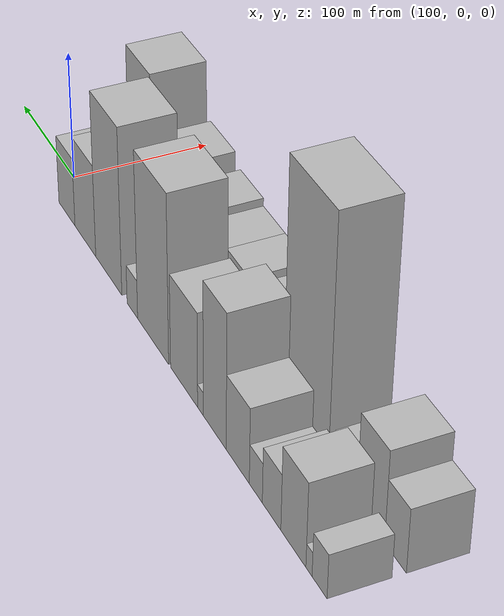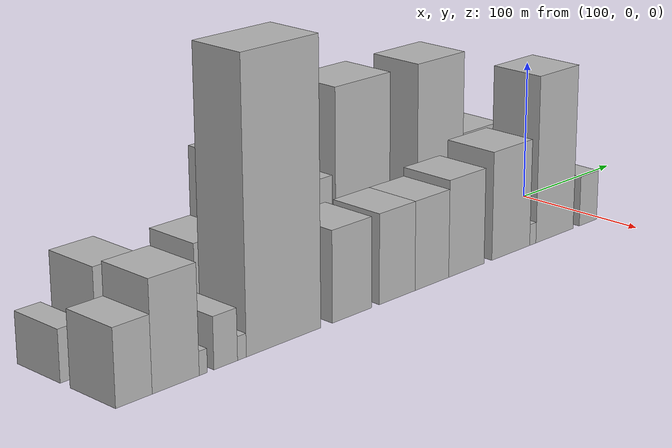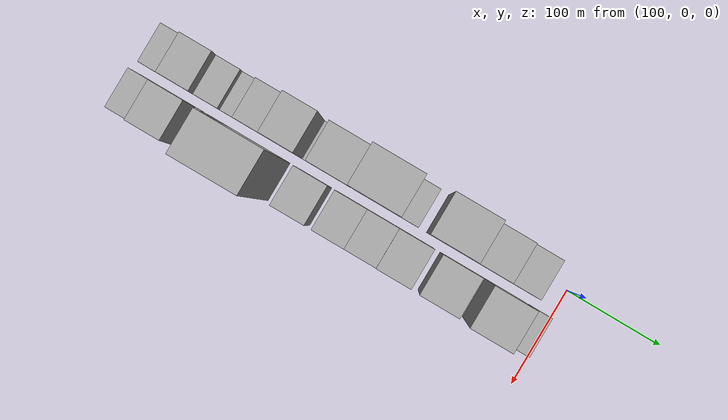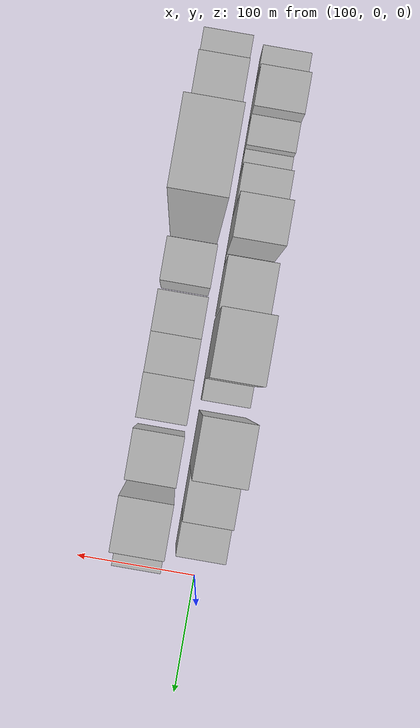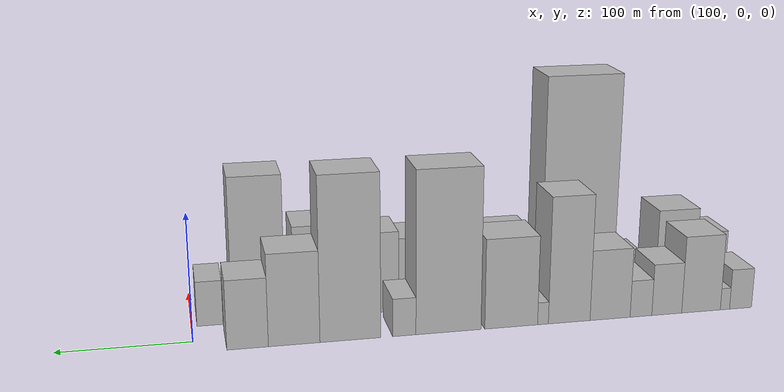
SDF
<sdf version="1.6">
 <world name="default">
  <model name="building_1">
   <static>1</static>
   <pose>100.0000 -428.6040 0 0.000000 0.000000 0.000000</pose>
   <link name="link">
    <pose>0 0 16.50 0 0 0</pose>
    <collision name="collision"><geometry><box><size>40.0000 18.7920 33.0000</size></box></geometry></collision>
    <visual name="visual">
     <cast_shadows>0</cast_shadows>
     <geometry><box><size>40.0000 18.7920 33.0000</size></box></geometry>
     <material>
      <script>
       <uri>model://HANNAS_wall/materials/scripts</uri>
       <uri>model://HANNAS_wall/materials/textures</uri>
       <name>vrc/HANNAS_wall</name>
      </script>
     </material>
    </visual>
   </link>
  </model>
  <model name="building_2">
   <static>1</static>
   <pose>100.0000 -415.2792 0 0.000000 0.000000 0.000000</pose>
   <link name="link">
    <pose>0 0 9.00 0 0 0</pose>
    <collision name="collision"><geometry><box><size>40.0000 7.8576 18.0000</size></box></geometry></collision>
    <visual name="visual">
     <cast_shadows>0</cast_shadows>
     <geometry><box><size>40.0000 7.8576 18.0000</size></box></geometry>
     <material>
      <script>
       <uri>model://HANNAS_wall/materials/scripts</uri>
       <uri>model://HANNAS_wall/materials/textures</uri>
       <name>vrc/HANNAS_wall</name>
      </script>
     </material>
    </visual>
   </link>
  </model>
  <model name="building_3">
   <static>1</static>
   <pose>100.0000 -395.0253 0 0.000000 0.000000 0.000000</pose>
   <link name="link">
    <pose>0 0 31.50 0 0 0</pose>
    <collision name="collision"><geometry><box><size>40.0000 32.6501 63.0000</size></box></geometry></collision>
    <visual name="visual">
     <cast_shadows>0</cast_shadows>
     <geometry><box><size>40.0000 32.6501 63.0000</size></box></geometry>
     <material>
      <script>
       <uri>model://HANNAS_wall/materials/scripts</uri>
       <uri>model://HANNAS_wall/materials/textures</uri>
       <name>vrc/HANNAS_wall</name>
      </script>
     </material>
    </visual>
   </link>
  </model>
  <model name="building_4">
   <static>1</static>
   <pose>100.0000 -366.2314 0 0.000000 0.000000 0.000000</pose>
   <link name="link">
    <pose>0 0 21.00 0 0 0</pose>
    <collision name="collision"><geometry><box><size>40.0000 24.9377 42.0000</size></box></geometry></collision>
    <visual name="visual">
     <cast_shadows>0</cast_shadows>
     <geometry><box><size>40.0000 24.9377 42.0000</size></box></geometry>
     <material>
      <script>
       <uri>model://HANNAS_wall/materials/scripts</uri>
       <uri>model://HANNAS_wall/materials/textures</uri>
       <name>vrc/HANNAS_wall</name>
      </script>
     </material>
    </visual>
   </link>
  </model>
  <model name="building_5">
   <static>1</static>
   <pose>100.0000 -344.7753 0 0.000000 0.000000 0.000000</pose>
   <link name="link">
    <pose>0 0 15.00 0 0 0</pose>
    <collision name="collision"><geometry><box><size>40.0000 17.9746 30.0000</size></box></geometry></collision>
    <visual name="visual">
     <cast_shadows>0</cast_shadows>
     <geometry><box><size>40.0000 17.9746 30.0000</size></box></geometry>
     <material>
      <script>
       <uri>model://HANNAS_wall/materials/scripts</uri>
       <uri>model://HANNAS_wall/materials/textures</uri>
       <name>vrc/HANNAS_wall</name>
      </script>
     </material>
    </visual>
   </link>
  </model>
  <model name="building_6">
   <static>1</static>
   <pose>100.0000 -319.3655 0 0.000000 0.000000 0.000000</pose>
   <link name="link">
    <pose>0 0 28.50 0 0 0</pose>
    <collision name="collision"><geometry><box><size>40.0000 32.8450 57.0000</size></box></geometry></collision>
    <visual name="visual">
     <cast_shadows>0</cast_shadows>
     <geometry><box><size>40.0000 32.8450 57.0000</size></box></geometry>
     <material>
      <script>
       <uri>model://HANNAS_wall/materials/scripts</uri>
       <uri>model://HANNAS_wall/materials/textures</uri>
       <name>vrc/HANNAS_wall</name>
      </script>
     </material>
    </visual>
   </link>
  </model>
  <model name="building_7">
   <static>1</static>
   <pose>100.0000 -286.0681 0 0.000000 0.000000 0.000000</pose>
   <link name="link">
    <pose>0 0 51.00 0 0 0</pose>
    <collision name="collision"><geometry><box><size>40.0000 33.7496 102.0000</size></box></geometry></collision>
    <visual name="visual">
     <cast_shadows>0</cast_shadows>
     <geometry><box><size>40.0000 33.7496 102.0000</size></box></geometry>
     <material>
      <script>
       <uri>model://HANNAS_wall/materials/scripts</uri>
       <uri>model://HANNAS_wall/materials/textures</uri>
       <name>vrc/HANNAS_wall</name>
      </script>
     </material>
    </visual>
   </link>
  </model>
  <model name="building_8">
   <static>1</static>
   <pose>100.0000 -264.8809 0 0.000000 0.000000 0.000000</pose>
   <link name="link">
    <pose>0 0 9.00 0 0 0</pose>
    <collision name="collision"><geometry><box><size>40.0000 8.6249 18.0000</size></box></geometry></collision>
    <visual name="visual">
     <cast_shadows>0</cast_shadows>
     <geometry><box><size>40.0000 8.6249 18.0000</size></box></geometry>
     <material>
      <script>
       <uri>model://HANNAS_wall/materials/scripts</uri>
       <uri>model://HANNAS_wall/materials/textures</uri>
       <name>vrc/HANNAS_wall</name>
      </script>
     </material>
    </visual>
   </link>
  </model>
  <model name="building_9">
   <static>1</static>
   <pose>100.0000 -239.6366 0 0.000000 0.000000 0.000000</pose>
   <link name="link">
    <pose>0 0 36.00 0 0 0</pose>
    <collision name="collision"><geometry><box><size>40.0000 41.8636 72.0000</size></box></geometry></collision>
    <visual name="visual">
     <cast_shadows>0</cast_shadows>
     <geometry><box><size>40.0000 41.8636 72.0000</size></box></geometry>
     <material>
      <script>
       <uri>model://HANNAS_wall/materials/scripts</uri>
       <uri>model://HANNAS_wall/materials/textures</uri>
       <name>vrc/HANNAS_wall</name>
      </script>
     </material>
    </visual>
   </link>
  </model>
  <model name="building_10">
   <static>1</static>
   <pose>100.0000 -190.4069 0 0.000000 0.000000 0.000000</pose>
   <link name="link">
    <pose>0 0 64.50 0 0 0</pose>
    <collision name="collision"><geometry><box><size>40.0000 50.5959 129.0000</size></box></geometry></collision>
    <visual name="visual">
     <cast_shadows>0</cast_shadows>
     <geometry><box><size>40.0000 50.5959 129.0000</size></box></geometry>
     <material>
      <script>
       <uri>model://HANNAS_wall/materials/scripts</uri>
       <uri>model://HANNAS_wall/materials/textures</uri>
       <name>vrc/HANNAS_wall</name>
      </script>
     </material>
    </visual>
   </link>
  </model>
  <model name="building_11">
   <static>1</static>
   <pose>100.0000 -156.2125 0 0.000000 0.000000 0.000000</pose>
   <link name="link">
    <pose>0 0 15.00 0 0 0</pose>
    <collision name="collision"><geometry><box><size>40.0000 17.7929 30.0000</size></box></geometry></collision>
    <visual name="visual">
     <cast_shadows>0</cast_shadows>
     <geometry><box><size>40.0000 17.7929 30.0000</size></box></geometry>
     <material>
      <script>
       <uri>model://HANNAS_wall/materials/scripts</uri>
       <uri>model://HANNAS_wall/materials/textures</uri>
       <name>vrc/HANNAS_wall</name>
      </script>
     </material>
    </visual>
   </link>
  </model>
  <model name="building_12">
   <static>1</static>
   <pose>100.0000 -115.3608 0 0.000000 0.000000 0.000000</pose>
   <link name="link">
    <pose>0 0 64.50 0 0 0</pose>
    <collision name="collision"><geometry><box><size>40.0000 45.9103 129.0000</size></box></geometry></collision>
    <visual name="visual">
     <cast_shadows>0</cast_shadows>
     <geometry><box><size>40.0000 45.9103 129.0000</size></box></geometry>
     <material>
      <script>
       <uri>model://HANNAS_wall/materials/scripts</uri>
       <uri>model://HANNAS_wall/materials/textures</uri>
       <name>vrc/HANNAS_wall</name>
      </script>
     </material>
    </visual>
   </link>
  </model>
  <model name="building_13">
   <static>1</static>
   <pose>100.0000 -73.3016 0 0.000000 0.000000 0.000000</pose>
   <link name="link">
    <pose>0 0 36.00 0 0 0</pose>
    <collision name="collision"><geometry><box><size>40.0000 38.2082 72.0000</size></box></geometry></collision>
    <visual name="visual">
     <cast_shadows>0</cast_shadows>
     <geometry><box><size>40.0000 38.2082 72.0000</size></box></geometry>
     <material>
      <script>
       <uri>model://HANNAS_wall/materials/scripts</uri>
       <uri>model://HANNAS_wall/materials/textures</uri>
       <name>vrc/HANNAS_wall</name>
      </script>
     </material>
    </visual>
   </link>
  </model>
  <model name="building_14">
   <static>1</static>
   <pose>100.0000 -39.0240 0 0.000000 0.000000 0.000000</pose>
   <link name="link">
    <pose>0 0 27.00 0 0 0</pose>
    <collision name="collision"><geometry><box><size>40.0000 30.3471 54.0000</size></box></geometry></collision>
    <visual name="visual">
     <cast_shadows>0</cast_shadows>
     <geometry><box><size>40.0000 30.3471 54.0000</size></box></geometry>
     <material>
      <script>
       <uri>model://HANNAS_wall/materials/scripts</uri>
       <uri>model://HANNAS_wall/materials/textures</uri>
       <name>vrc/HANNAS_wall</name>
      </script>
     </material>
    </visual>
   </link>
  </model>
  <model name="building_28">
   <static>1</static>
   <pose>149.0000 -424.8839 0 0.000000 0.000000 0.000000</pose>
   <link name="link">
    <pose>0 0 24.00 0 0 0</pose>
    <collision name="collision"><geometry><box><size>40.0000 26.2322 48.0000</size></box></geometry></collision>
    <visual name="visual">
     <cast_shadows>0</cast_shadows>
     <geometry><box><size>40.0000 26.2322 48.0000</size></box></geometry>
     <material>
      <script>
       <uri>model://HANNAS_wall/materials/scripts</uri>
       <uri>model://HANNAS_wall/materials/textures</uri>
       <name>vrc/HANNAS_wall</name>
      </script>
     </material>
    </visual>
   </link>
  </model>
  <model name="building_29">
   <static>1</static>
   <pose>149.0000 -394.2897 0 0.000000 0.000000 0.000000</pose>
   <link name="link">
    <pose>0 0 34.50 0 0 0</pose>
    <collision name="collision"><geometry><box><size>40.0000 34.9562 69.0000</size></box></geometry></collision>
    <visual name="visual">
     <cast_shadows>0</cast_shadows>
     <geometry><box><size>40.0000 34.9562 69.0000</size></box></geometry>
     <material>
      <script>
       <uri>model://HANNAS_wall/materials/scripts</uri>
       <uri>model://HANNAS_wall/materials/textures</uri>
       <name>vrc/HANNAS_wall</name>
      </script>
     </material>
    </visual>
   </link>
  </model>
  <model name="building_30">
   <static>1</static>
   <pose>149.0000 -373.6781 0 0.000000 0.000000 0.000000</pose>
   <link name="link">
    <pose>0 0 7.50 0 0 0</pose>
    <collision name="collision"><geometry><box><size>40.0000 6.2671 15.0000</size></box></geometry></collision>
    <visual name="visual">
     <cast_shadows>0</cast_shadows>
     <geometry><box><size>40.0000 6.2671 15.0000</size></box></geometry>
     <material>
      <script>
       <uri>model://HANNAS_wall/materials/scripts</uri>
       <uri>model://HANNAS_wall/materials/textures</uri>
       <name>vrc/HANNAS_wall</name>
      </script>
     </material>
    </visual>
   </link>
  </model>
  <model name="building_31">
   <static>1</static>
   <pose>149.0000 -356.3457 0 0.000000 0.000000 0.000000</pose>
   <link name="link">
    <pose>0 0 16.50 0 0 0</pose>
    <collision name="collision"><geometry><box><size>40.0000 18.3976 33.0000</size></box></geometry></collision>
    <visual name="visual">
     <cast_shadows>0</cast_shadows>
     <geometry><box><size>40.0000 18.3976 33.0000</size></box></geometry>
     <material>
      <script>
       <uri>model://HANNAS_wall/materials/scripts</uri>
       <uri>model://HANNAS_wall/materials/textures</uri>
       <name>vrc/HANNAS_wall</name>
      </script>
     </material>
    </visual>
   </link>
  </model>
  <model name="building_32">
   <static>1</static>
   <pose>149.0000 -343.6313 0 0.000000 0.000000 0.000000</pose>
   <link name="link">
    <pose>0 0 7.50 0 0 0</pose>
    <collision name="collision"><geometry><box><size>40.0000 7.0311 15.0000</size></box></geometry></collision>
    <visual name="visual">
     <cast_shadows>0</cast_shadows>
     <geometry><box><size>40.0000 7.0311 15.0000</size></box></geometry>
     <material>
      <script>
       <uri>model://HANNAS_wall/materials/scripts</uri>
       <uri>model://HANNAS_wall/materials/textures</uri>
       <name>vrc/HANNAS_wall</name>
      </script>
     </material>
    </visual>
   </link>
  </model>
  <model name="building_33">
   <static>1</static>
   <pose>149.0000 -309.3926 0 0.000000 0.000000 0.000000</pose>
   <link name="link">
    <pose>0 0 91.50 0 0 0</pose>
    <collision name="collision"><geometry><box><size>40.0000 61.4463 183.0000</size></box></geometry></collision>
    <visual name="visual">
     <cast_shadows>0</cast_shadows>
     <geometry><box><size>40.0000 61.4463 183.0000</size></box></geometry>
     <material>
      <script>
       <uri>model://HANNAS_wall/materials/scripts</uri>
       <uri>model://HANNAS_wall/materials/textures</uri>
       <name>vrc/HANNAS_wall</name>
      </script>
     </material>
    </visual>
   </link>
  </model>
  <model name="building_34">
   <static>1</static>
   <pose>149.0000 -251.3456 0 0.000000 0.000000 0.000000</pose>
   <link name="link">
    <pose>0 0 30.00 0 0 0</pose>
    <collision name="collision"><geometry><box><size>40.0000 34.6478 60.0000</size></box></geometry></collision>
    <visual name="visual">
     <cast_shadows>0</cast_shadows>
     <geometry><box><size>40.0000 34.6478 60.0000</size></box></geometry>
     <material>
      <script>
       <uri>model://HANNAS_wall/materials/scripts</uri>
       <uri>model://HANNAS_wall/materials/textures</uri>
       <name>vrc/HANNAS_wall</name>
      </script>
     </material>
    </visual>
   </link>
  </model>
  <model name="building_35">
   <static>1</static>
   <pose>149.0000 -210.4930 0 0.000000 0.000000 0.000000</pose>
   <link name="link">
    <pose>0 0 30.00 0 0 0</pose>
    <collision name="collision"><geometry><box><size>40.0000 33.0572 60.0000</size></box></geometry></collision>
    <visual name="visual">
     <cast_shadows>0</cast_shadows>
     <geometry><box><size>40.0000 33.0572 60.0000</size></box></geometry>
     <material>
      <script>
       <uri>model://HANNAS_wall/materials/scripts</uri>
       <uri>model://HANNAS_wall/materials/textures</uri>
       <name>vrc/HANNAS_wall</name>
      </script>
     </material>
    </visual>
   </link>
  </model>
  <model name="building_36">
   <static>1</static>
   <pose>149.0000 -177.7539 0 0.000000 0.000000 0.000000</pose>
   <link name="link">
    <pose>0 0 30.00 0 0 0</pose>
    <collision name="collision"><geometry><box><size>40.0000 32.4210 60.0000</size></box></geometry></collision>
    <visual name="visual">
     <cast_shadows>0</cast_shadows>
     <geometry><box><size>40.0000 32.4210 60.0000</size></box></geometry>
     <material>
      <script>
       <uri>model://HANNAS_wall/materials/scripts</uri>
       <uri>model://HANNAS_wall/materials/textures</uri>
       <name>vrc/HANNAS_wall</name>
      </script>
     </material>
    </visual>
   </link>
  </model>
  <model name="building_37">
   <static>1</static>
   <pose>149.0000 -143.9189 0 0.000000 0.000000 0.000000</pose>
   <link name="link">
    <pose>0 0 33.00 0 0 0</pose>
    <collision name="collision"><geometry><box><size>40.0000 35.2490 66.0000</size></box></geometry></collision>
    <visual name="visual">
     <cast_shadows>0</cast_shadows>
     <geometry><box><size>40.0000 35.2490 66.0000</size></box></geometry>
     <material>
      <script>
       <uri>model://HANNAS_wall/materials/scripts</uri>
       <uri>model://HANNAS_wall/materials/textures</uri>
       <name>vrc/HANNAS_wall</name>
      </script>
     </material>
    </visual>
   </link>
  </model>
  <model name="building_38">
   <static>1</static>
   <pose>149.0000 -98.4647 0 0.000000 0.000000 0.000000</pose>
   <link name="link">
    <pose>0 0 37.50 0 0 0</pose>
    <collision name="collision"><geometry><box><size>40.0000 39.6595 75.0000</size></box></geometry></collision>
    <visual name="visual">
     <cast_shadows>0</cast_shadows>
     <geometry><box><size>40.0000 39.6595 75.0000</size></box></geometry>
     <material>
      <script>
       <uri>model://HANNAS_wall/materials/scripts</uri>
       <uri>model://HANNAS_wall/materials/textures</uri>
       <name>vrc/HANNAS_wall</name>
      </script>
     </material>
    </visual>
   </link>
  </model>
  <model name="building_39">
   <static>1</static>
   <pose>149.0000 -75.2863 0 0.000000 0.000000 0.000000</pose>
   <link name="link">
    <pose>0 0 7.50 0 0 0</pose>
    <collision name="collision"><geometry><box><size>40.0000 6.6972 15.0000</size></box></geometry></collision>
    <visual name="visual">
     <cast_shadows>0</cast_shadows>
     <geometry><box><size>40.0000 6.6972 15.0000</size></box></geometry>
     <material>
      <script>
       <uri>model://HANNAS_wall/materials/scripts</uri>
       <uri>model://HANNAS_wall/materials/textures</uri>
       <name>vrc/HANNAS_wall</name>
      </script>
     </material>
    </visual>
   </link>
  </model>
  <model name="building_40">
   <static>1</static>
   <pose>149.0000 -51.4730 0 0.000000 0.000000 0.000000</pose>
   <link name="link">
    <pose>0 0 58.50 0 0 0</pose>
    <collision name="collision"><geometry><box><size>40.0000 40.9293 117.0000</size></box></geometry></collision>
    <visual name="visual">
     <cast_shadows>0</cast_shadows>
     <geometry><box><size>40.0000 40.9293 117.0000</size></box></geometry>
     <material>
      <script>
       <uri>model://HANNAS_wall/materials/scripts</uri>
       <uri>model://HANNAS_wall/materials/textures</uri>
       <name>vrc/HANNAS_wall</name>
      </script>
     </material>
    </visual>
   </link>
  </model>
  <model name="building_41">
   <static>1</static>
   <pose>149.0000 -14.0813 0 0.000000 0.000000 0.000000</pose>
   <link name="link">
    <pose>0 0 18.00 0 0 0</pose>
    <collision name="collision"><geometry><box><size>40.0000 19.8541 36.0000</size></box></geometry></collision>
    <visual name="visual">
     <cast_shadows>0</cast_shadows>
     <geometry><box><size>40.0000 19.8541 36.0000</size></box></geometry>
     <material>
      <script>
       <uri>model://HANNAS_wall/materials/scripts</uri>
       <uri>model://HANNAS_wall/materials/textures</uri>
       <name>vrc/HANNAS_wall</name>
      </script>
     </material>
    </visual>
   </link>
  </model>
 </world>
</sdf>
